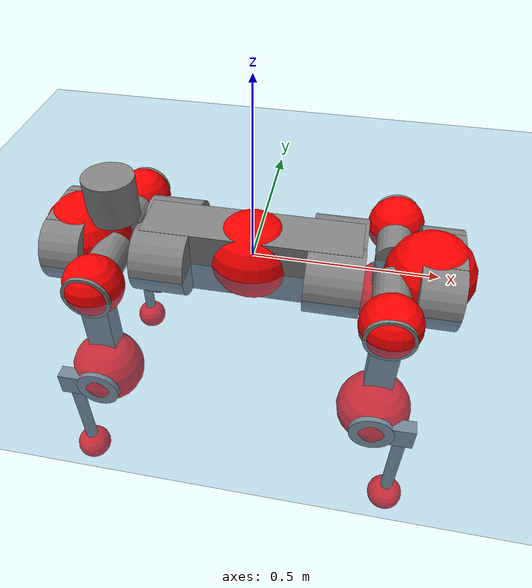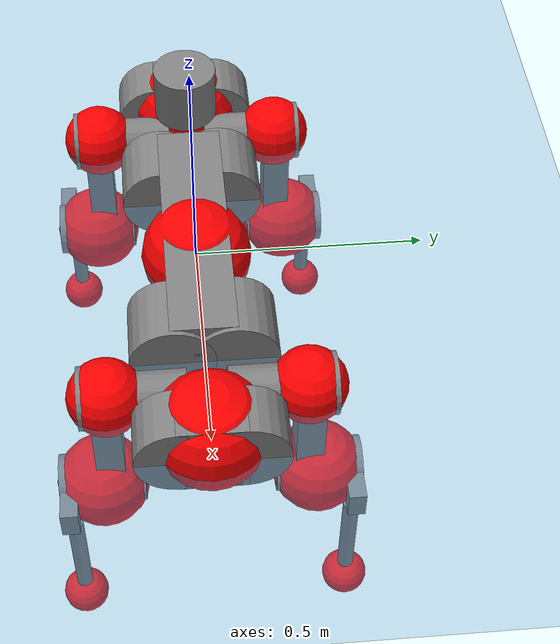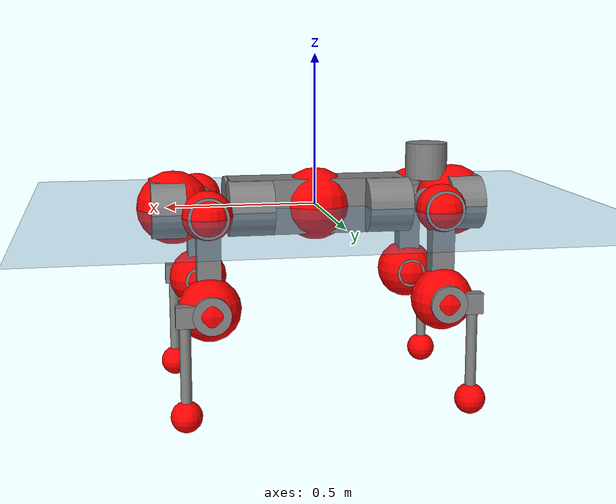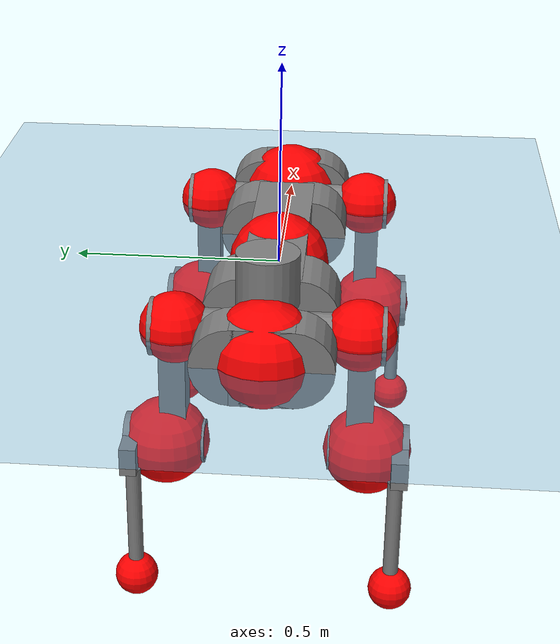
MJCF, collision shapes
<mujoco model="anymal_c">
  <compiler angle="radian" assetdir="assets" balanceinertia="true" inertiafromgeom="false"/>

  <option timestep="0.005" density="1.2" viscosity="2e-05"/>

  <size nkey="1"/>

  <visual>
    <quality shadowsize="8192"/>
    <map shadowclip="0.5"/>
  </visual>

  <default>
    <default class="/">
      <material specular="0" shininess="0.25"/>
      <geom contype="0" conaffinity="0" group="1" solref="-1000 -80"/>
      <site size="0.01 0.005 0.005" group="5"/>
      <general forcelimited="true" forcerange="-80 80" biastype="affine" gainprm="80" biasprm="0 -80 -2"/>
      <default class="anymal_c">
        <joint armature="0.01" damping="0.01" frictionloss="0.1"/>
        <default class="visual">
          <geom type="mesh" group="2"/>
          <default class="visual_zflip"/>
        </default>
        <default class="collision">
          <geom type="cylinder" group="3"/>
          <default class="foot">
            <geom size="0.03 0 0" type="sphere" condim="6" priority="1" friction="0.8 0.02 0.01" solimp="0.015 1 0.03"/>
          </default>
        </default>
      </default>
      <default class="reward_collision_sphere">
        <geom group="5" rgba="1 0 0 1"/>
      </default>
    </default>
  </default>

  <asset>
    <texture type="skybox" colorspace="auto" name="//unnamed_texture_0" builtin="gradient" rgb1="0.95 0.95 0.95" rgb2="0.95 0.95 0.95" width="100" height="600"/>
    <texture type="2d" colorspace="auto" name="texplane" builtin="checker" rgb1="0.345 0.575 0.748" rgb2="0.345 0.575 0.748" markrgb="1 1 1" width="512" height="512"/>
    <texture type="2d" colorspace="linear" name="base" file="base.png"/>
    <texture type="2d" colorspace="linear" name="top_shell" file="top_shell.png"/>
    <texture type="2d" colorspace="linear" name="bottom_shell" file="bottom_shell.png"/>
    <texture type="2d" colorspace="linear" name="remote" file="remote.png"/>
    <texture type="2d" colorspace="linear" name="hatch" file="hatch.png"/>
    <texture type="2d" colorspace="linear" name="handle" file="handle.png"/>
    <texture type="2d" colorspace="linear" name="face" file="face.png"/>
    <texture type="2d" colorspace="linear" name="battery" file="battery.png"/>
    <texture type="2d" colorspace="linear" name="lidar_cage" file="lidar_cage.png"/>
    <texture type="2d" colorspace="linear" name="depth_camera" file="depth_camera.png"/>
    <texture type="2d" colorspace="linear" name="wide_angle_camera" file="wide_angle_camera.png"/>
    <texture type="2d" colorspace="linear" name="lidar" file="lidar.png"/>
    <texture type="2d" colorspace="linear" name="drive" file="drive.png"/>
    <texture type="2d" colorspace="linear" name="hip_l" file="hip_l.png"/>
    <texture type="2d" colorspace="linear" name="shank_l" file="shank_l.png"/>
    <texture type="2d" colorspace="linear" name="foot" file="foot.png"/>
    <texture type="2d" colorspace="linear" name="thigh" file="thigh.png"/>
    <texture type="2d" colorspace="linear" name="shank_r" file="shank_r.png"/>
    <texture type="2d" colorspace="linear" name="hip_r" file="hip_r.png"/>
    <material name="MatPlane" class="/" texture="texplane" texuniform="true" texrepeat="2 2" specular="0.9" shininess="0.5"/>
    <material name="black_plastic" class="/" rgba="0.007 0.007 0.007 1"/>
    <material name="green" class="/" rgba="0.052 0.178 0.033 1"/>
    <material name="red" class="/" rgba="0.178 0.006 0.005 1"/>
    <material name="yellow" class="/" rgba="0.178 0.119 0.006 1"/>
    <material name="lwl" class="/" rgba="0.8 0.8 0.8 1"/>
    <material name="base" class="/" texture="base"/>
    <material name="top_shell" class="/" texture="top_shell"/>
    <material name="bottom_shell" class="/" texture="bottom_shell"/>
    <material name="hip_l" class="/" texture="hip_l"/>
    <material name="thigh" class="/" texture="thigh"/>
    <material name="shank_l" class="/" texture="shank_l"/>
    <material name="foot" class="/" texture="foot"/>
    <material name="hip_r" class="/" texture="hip_r"/>
    <material name="shank" class="/" texture="shank_r"/>
    <material name="hatch" class="/" texture="hatch"/>
    <material name="remote" class="/" texture="remote"/>
    <material name="handle" class="/" texture="handle"/>
    <material name="face" class="/" texture="face"/>
    <material name="depth_camera" class="/" texture="depth_camera"/>
    <material name="wide_angle_camera" class="/" texture="wide_angle_camera"/>
    <material name="battery" class="/" texture="battery"/>
    <material name="lidar_cage" class="/" texture="lidar_cage"/>
    <material name="lidar" class="/" texture="lidar"/>
    <material name="drive" class="/" texture="drive"/>
    <mesh name="base_0" class="/" file="base_0.obj"/>
    <mesh name="base_1" class="/" file="base_1.obj"/>
    <mesh name="base_2" class="/" file="base_2.obj"/>
    <mesh name="base_3" class="/" file="base_3.obj"/>
    <mesh name="base_4" class="/" file="base_4.obj"/>
    <mesh name="base_5" class="/" file="base_5.obj"/>
    <mesh name="top_shell" class="/" file="top_shell.obj"/>
    <mesh name="bottom_shell" class="/" file="bottom_shell.obj"/>
    <mesh name="remote" class="/" file="remote.obj"/>
    <mesh name="handle" class="/" file="handle.obj"/>
    <mesh name="face" class="/" file="face.obj"/>
    <mesh name="wide_angle_camera" class="/" file="wide_angle_camera.obj"/>
    <mesh name="depth_camera" class="/" file="depth_camera.obj"/>
    <mesh name="battery" class="/" file="battery.obj"/>
    <mesh name="lidar_cage" class="/" file="lidar_cage.obj"/>
    <mesh name="lidar" class="/" file="lidar.obj"/>
    <mesh name="drive" class="/" file="drive.obj"/>
    <mesh name="hip_l" class="/" file="hip_l.obj"/>
    <mesh name="thigh" class="/" file="thigh.obj"/>
    <mesh name="shank_l" class="/" file="shank_l.obj"/>
    <mesh name="foot" class="/" file="foot.obj"/>
    <mesh name="hip_r" class="/" file="hip_r.obj"/>
    <mesh name="hatch" class="/" file="hatch.obj"/>
    <mesh name="shank_r" class="/" file="shank_r.obj"/>
  </asset>

  <worldbody>
    <geom name="floor" class="/" size="100 100 0.125" type="plane" group="0" material="MatPlane"/>
    <light name="toplight_shadow" class="/" pos="0 0 5" dir="0.0990148 0.0990148 -0.990148" type="directional" ambient="0.04 0.04 0.04" diffuse="0.55 0.55 0.55" specular="0.12 0.12 0.12"/>
    <light name="toplight_fill" class="/" pos="0 0 5" dir="0.0990148 0.0990148 -0.990148" type="directional" castshadow="false" ambient="0.04 0.04 0.04" diffuse="0.3 0.3 0.3" specular="0.08 0.08 0.08"/>
    <body name="trunk" childclass="anymal_c" pos="-0.000885046 0.000706232 0.000480224" quat="1 7.10573e-05 -3.49141e-05 -4.82551e-05">
      <inertial pos="0.00119172 -0.000260869 0.0503493" quat="0.498509 0.500996 0.499479 0.501012" mass="19.9434" diaginertia="0.851245 0.471274 0.254572"/>
      <joint name="//unnamed_joint_0" type="free" armature="0" damping="0" frictionloss="0"/>
      <geom name="//unnamed_geom_1" class="visual" material="green" mesh="base_0"/>
      <geom name="//unnamed_geom_2" class="visual" material="yellow" mesh="base_1"/>
      <geom name="//unnamed_geom_3" class="visual" material="red" mesh="base_2"/>
      <geom name="//unnamed_geom_4" class="visual" material="black_plastic" mesh="base_3"/>
      <geom name="//unnamed_geom_5" class="visual" material="lwl" mesh="base_4"/>
      <geom name="//unnamed_geom_6" class="visual" material="base" mesh="base_5"/>
      <geom name="trunk_1" class="collision" size="0.293313 0.0707996 0.0910281" type="box"/>
      <geom name="trunk_2" class="collision" size="0.0910281 0.0733282" pos="0.230193 0.0661579 0" quat="0.707107 0 0.707107 0"/>
      <geom name="trunk_3" class="collision" size="0.0910281 0.0733282" pos="-0.230193 0.0661579 0" quat="0.707107 0 0.707107 0"/>
      <geom name="trunk_4" class="collision" size="0.0910281 0.0733282" pos="0.230193 -0.0661579 0" quat="0.707107 0 0.707107 0"/>
      <geom name="trunk_5" class="collision" size="0.0910281 0.0733282" pos="-0.230193 -0.0661579 0" quat="0.707107 0 0.707107 0"/>
      <geom name="//unnamed_geom_12" class="visual" material="top_shell" mesh="top_shell"/>
      <geom name="//unnamed_geom_13" class="visual" material="bottom_shell" mesh="bottom_shell"/>
      <geom name="//unnamed_geom_14" class="visual" material="remote" mesh="remote"/>
      <geom name="//unnamed_geom_15" class="visual" material="handle" mesh="handle"/>
      <geom name="//unnamed_geom_16" class="visual" pos="0.438689 0 0" quat="1 0 0 0" material="face" mesh="face"/>
      <geom name="trunk_6" class="collision" size="0.0556283 0.0707996 0.0910281" pos="0.496899 0 0" type="box"/>
      <geom name="//unnamed_geom_18" class="collision" size="0.0910281 0.0556283" pos="0.496899 0.0661579 0" quat="0.707107 0 0.707107 0"/>
      <geom name="//unnamed_geom_19" class="collision" size="0.0910281 0.0556283" pos="0.496899 -0.0661579 0" quat="0.707107 0 0.707107 0"/>
      <geom name="//unnamed_geom_20" class="visual" pos="0.48859 0 -0.0298899" quat="0.965926 0 0.258819 0" material="depth_camera" mesh="depth_camera"/>
      <geom name="//unnamed_geom_21" class="visual" pos="0.542938 0 0.015431" material="wide_angle_camera" mesh="wide_angle_camera"/>
      <geom name="//unnamed_geom_22" class="visual_zflip" pos="-0.438689 0 0" quat="0 0 0 1" material="face" mesh="face"/>
      <geom name="trunk_7" class="collision" size="0.0556283 0.0707996 0.0910281" pos="-0.496899 0 0" quat="0 0 0 1" type="box"/>
      <geom name="//unnamed_geom_24" class="collision" size="0.0910281 0.0556283" pos="-0.496899 -0.0661579 0" quat="0 -0.707107 0 0.707107"/>
      <geom name="//unnamed_geom_25" class="collision" size="0.0910281 0.0556283" pos="-0.496899 0.0661579 0" quat="0 -0.707107 0 0.707107"/>
      <geom name="//unnamed_geom_26" class="visual" pos="-0.48859 0 -0.0298899" quat="0 -0.258819 0 0.965926" material="depth_camera" mesh="depth_camera"/>
      <geom name="//unnamed_geom_27" class="visual_zflip" pos="-0.542938 0 0.015431" quat="0 0 0 1" material="wide_angle_camera" mesh="wide_angle_camera"/>
      <geom name="//unnamed_geom_28" class="visual" material="battery" mesh="battery"/>
      <geom name="//unnamed_geom_29" class="visual" pos="0 0.0707762 0.0301541" quat="0.683013 -0.183013 0.183013 0.683013" material="depth_camera" mesh="depth_camera"/>
      <geom name="//unnamed_geom_30" class="visual" pos="0 -0.0707762 0.0301541" quat="0.683013 0.183013 0.183013 -0.683013" material="depth_camera" mesh="depth_camera"/>
      <geom name="//unnamed_geom_31" class="visual" pos="-0.385242 0 0.0757637" quat="1 0 0 0" material="lidar_cage" mesh="lidar_cage"/>
      <geom name="trunk_8" class="collision" size="0.0707996 0.0606854" pos="-0.385242 0 0.137612"/>
      <geom name="//unnamed_geom_33" class="visual" pos="-0.385242 -4.44906e-05 0.146579" quat="0.707107 0 0 -0.707107" material="lidar" mesh="lidar"/>
      <geom name="//unnamed_geom_34" class="visual" pos="0.317401 0.0983222 -1.47807e-09" quat="0.258819 0.965926 0 0" material="drive" mesh="drive"/>
      <geom name="//unnamed_geom_35" class="visual" pos="0.317401 -0.0983222 1.47807e-09" quat="0.258819 -0.965926 0 0" material="drive" mesh="drive"/>
      <geom name="//unnamed_geom_36" class="visual" pos="-0.317401 0.0983222 1.47807e-09" quat="0 0 0.965926 -0.258819" material="drive" mesh="drive"/>
      <geom name="//unnamed_geom_37" class="visual" pos="-0.317401 -0.0983222 -1.47807e-09" quat="0 0 -0.965926 -0.258819" material="drive" mesh="drive"/>
      <geom name="//unnamed_geom_38" class="visual" pos="0.12277 0 0.0752483" quat="1 0 0 0" material="hatch" mesh="hatch"/>
      <geom name="//unnamed_geom_39" class="reward_collision_sphere" size="0.121371"/>
      <geom name="//unnamed_geom_40" class="reward_collision_sphere" size="0.121371" pos="0.476261 0 0"/>
      <geom name="//unnamed_geom_41" class="reward_collision_sphere" size="0.121371" pos="-0.476261 0 0"/>
      <site name="imu" pos="0.262667 0.00626659 0.0465535" size="0.0101142"/>
      <camera name="track" pos="0 -1.89023 0" quat="0.707107 0.707107 0 0" mode="trackcom"/>
      <camera name="ego_camera" pos="0.476261 0 -0.0412319" quat="-0.5 -0.5 0.5 0.5"/>
      <body name="LF_HIP" pos="0.318493 0.0995744 -0.0013126" quat="0.258734 0.965949 -0.000153283 -0.000471336">
        <inertial pos="0.0588462 -0.0132962 -0.00752182" quat="-0.127582 0.708739 -0.135454 0.680488" mass="2.87377" diaginertia="0.00775313 0.00368904 0.00379434"/>
        <joint name="LF_HAA" pos="0 0 0" axis="0.99999 -0.00129128 -0.00420231" range="-0.713795 0.485315" armature="0.00991447" damping="0.014806" frictionloss="0.0979832"/>
        <geom name="//unnamed_geom_42" class="visual" pos="0 -8.69481e-05 1.42812e-05" quat="0.258819 -0.965926 0 0" material="hip_l" mesh="hip_l"/>
        <geom name="//unnamed_geom_43" class="visual" pos="0.0633956 -0.0753567 -0.044141" quat="0.183013 -0.683013 0.683013 0.183013" material="drive" mesh="drive"/>
        <geom name="//unnamed_geom_44" class="collision" size="0.0505712 0.0707996" pos="0.0633956 -0.0113034 -0.00711766" quat="-0.353553 -0.612372 0.612372 -0.353553"/>
        <body name="LF_THIGH" pos="0.0633118 -0.0685693 -0.0432495" quat="0.182959 -0.683135 0.682916 0.182971">
          <inertial pos="0.0337607 -0.000140345 -0.252823" quat="0.993236 -0.0040115 -0.0801116 0.0839511" mass="3.16691" diaginertia="0.0402521 0.0226412 0.00490224"/>
          <joint name="LF_HFE" pos="0 0 0" axis="0.999993 -0.00146468 0.00350193" stiffness="0.0070777" range="-3.14243 3.12894" armature="0.00984869" damping="0.00247504" frictionloss="0.0967739"/>
          <geom name="//unnamed_geom_45" class="visual" pos="0.00225312 3.55038e-06 0" quat="0.707107 0 0 -0.707107" material="thigh" mesh="thigh"/>
          <geom name="//unnamed_geom_46" class="collision" size="0.0657425 0.0404569" pos="0.0423343 0 0" quat="0.5 0.5 -0.5 -0.5"/>
          <geom name="//unnamed_geom_47" class="collision" size="0.0379284 0.0303427 0.142928" pos="0.0317507 0 -0.145666" quat="0.707107 0 0 -0.707107" type="box"/>
          <geom name="//unnamed_geom_48" class="visual" pos="0.106153 0 -0.293777" quat="1 0 0 0" material="drive" mesh="drive"/>
          <geom name="//unnamed_geom_49" class="collision" size="0.0505712 0.0707996" pos="0.0320682 0 -0.293777" quat="0.707107 0 0.707107 0"/>
          <geom name="//unnamed_geom_50" class="reward_collision_sphere" size="0.0809138" pos="0.0264589 0 0"/>
          <body name="LF_SHANK" pos="0.106685 -9.94183e-05 -0.294278" quat="1 -0.000245233 -0.000222016 -0.000352828">
            <inertial pos="0.00483711 -0.0587824 -0.0826725" quat="0.992817 -0.116652 -0.00118604 -0.0265578" mass="0.61043" diaginertia="0.0135186 0.00689172 0.00131656"/>
            <joint name="LF_KFE" pos="0 0 0" axis="1 0.000551213 -0.000208681" range="-3.13747 3.13899" armature="0.0106503" damping="0.00930908" frictionloss="0.0994131"/>
            <geom name="//unnamed_geom_51" class="visual" pos="0.000734692 0.00391741 0" quat="0.707107 0 0 -0.707107" material="shank_l" mesh="shank_l"/>
            <geom name="LF_kfe_act" class="collision" size="0.0606854 0.0202285" pos="0.0211672 0 0" quat="0.5 0.5 -0.5 -0.5"/>
            <geom name="//unnamed_geom_53" class="collision" size="0.0581558 0.0341355 0.019217" pos="0.0211672 -0.0543431 0" quat="0.5 0.5 -0.5 -0.5" type="box"/>
            <geom name="//unnamed_geom_54" class="visual" pos="0.0138114 -0.0818603 -0.348379" quat="0.382683 0 0 -0.92388" material="foot" mesh="foot"/>
            <geom name="LF_calf" class="collision" size="0.0176999 0.142866" pos="0.0138116 -0.0831227 -0.174189" quat="0.707107 0 0 -0.707107"/>
            <geom name="LF_foot" class="foot" size="0.0288004" pos="0.0138116 -0.0831227 -0.325186" quat="0.707107 0 0 -0.707107"/>
            <geom name="//unnamed_geom_57" class="reward_collision_sphere" size="0.101142" pos="-0.0529179 0 0"/>
            <geom name="//unnamed_geom_58" class="reward_collision_sphere" size="0.0505712" pos="0.0138116 -0.0831227 -0.325186"/>
            <site name="LF_foot" class="foot" pos="0.0138116 -0.0831227 -0.325186" quat="0.707107 0 0 -0.707107" size="0.0101142"/>
          </body>
        </body>
      </body>
      <body name="RF_HIP" pos="0.317993 -0.0985439 -0.000147507" quat="0.258798 -0.965931 0.000205251 0.00011613">
        <inertial pos="0.0598759 0.0147985 -0.00852515" quat="0.134579 0.679802 0.126841 0.709697" mass="2.90744" diaginertia="0.00766779 0.00365413 0.00383639"/>
        <joint name="RF_HAA" pos="0 0 0" axis="1 -0.000877884 -0.000204304" stiffness="0.000560415" range="-0.511903 0.722521" armature="0.00958472" damping="0.00991477" frictionloss="0.106003"/>
        <geom name="//unnamed_geom_59" class="visual" pos="0 8.69474e-05 1.42811e-05" quat="0.258819 0.965926 0 0" material="hip_r" mesh="hip_r"/>
        <geom name="//unnamed_geom_60" class="visual" pos="0.0633956 0.0753567 -0.044141" quat="0.183013 0.683013 0.683013 -0.183013" material="drive" mesh="drive"/>
        <geom name="//unnamed_geom_61" class="collision" size="0.0505712 0.0707996" pos="0.0633956 0.0113034 -0.00711766" quat="-0.353553 0.612372 0.612372 0.353553"/>
        <body name="RF_THIGH" pos="0.064153 0.0683961 -0.0436715" quat="0.183058 0.683063 0.682902 -0.183194">
          <inertial pos="0.0333413 -0.00118788 -0.25326" quat="0.992934 -0.00608278 -0.0797432 0.0876658" mass="3.13891" diaginertia="0.040428 0.022827 0.00490302"/>
          <joint name="RF_HFE" pos="0 0 0" axis="0.999995 0.00226062 0.00233506" stiffness="0.00582323" range="-3.14262 3.14442" armature="0.0101151" damping="0.00919457" frictionloss="0.0978781"/>
          <geom name="//unnamed_geom_62" class="visual" pos="0.00225312 3.55038e-06 0" quat="0.707107 0 0 -0.707107" material="thigh" mesh="thigh"/>
          <geom name="//unnamed_geom_63" class="collision" size="0.0657425 0.0404569" pos="0.0423343 0 0" quat="0.5 0.5 0.5 0.5"/>
          <geom name="//unnamed_geom_64" class="collision" size="0.0379284 0.0303427 0.142928" pos="0.0317507 0 -0.145666" quat="0.707107 0 0 0.707107" type="box"/>
          <geom name="//unnamed_geom_65" class="visual" pos="0.106153 0 -0.293777" quat="1 0 0 0" material="drive" mesh="drive"/>
          <geom name="//unnamed_geom_66" class="collision" size="0.0505712 0.0707996" pos="0.0320682 0 -0.293777" quat="0.707107 0 0.707107 0"/>
          <geom name="//unnamed_geom_67" class="reward_collision_sphere" size="0.0809138" pos="0.0264589 0 0"/>
          <body name="RF_SHANK" pos="0.105027 0.000189994 -0.294111" quat="1 1.57231e-05 -1.42322e-05 8.42635e-06">
            <inertial pos="0.00501034 0.0578856 -0.0832278" quat="0.993103 0.114382 -0.00186603 0.0256696" mass="0.610038" diaginertia="0.0134915 0.00701131 0.00129589"/>
            <joint name="RF_KFE" pos="0 0 0" axis="0.999993 0.00345634 -0.00138885" range="-3.13657 3.13437" armature="0.0099815" damping="0.00442851" frictionloss="0.102887"/>
            <geom name="//unnamed_geom_68" class="visual" pos="0.000734688 -0.00391741 0" quat="0.707107 0 0 0.707107" material="shank" mesh="shank_r"/>
            <geom name="RF_kfe_act" class="collision" size="0.0606854 0.0202285" pos="0.0211672 0 0" quat="0.5 0.5 0.5 0.5"/>
            <geom name="//unnamed_geom_70" class="collision" size="0.0581558 0.0341355 0.019217" pos="0.0211672 0.0543431 0" quat="0.5 0.5 0.5 0.5" type="box"/>
            <geom name="//unnamed_geom_71" class="visual" pos="0.0138117 0.0818603 -0.348379" quat="0.382683 0 0 0.92388" material="foot" mesh="foot"/>
            <geom name="RF_calf" class="collision" size="0.0176999 0.142866" pos="0.0138116 0.0831227 -0.174189" quat="0.707107 0 0 0.707107"/>
            <geom name="RF_foot" class="foot" size="0.0298884" pos="0.0138116 0.0831227 -0.325186" quat="0.707107 0 0 0.707107"/>
            <geom name="//unnamed_geom_74" class="reward_collision_sphere" size="0.101142" pos="-0.0529179 0 0"/>
            <geom name="//unnamed_geom_75" class="reward_collision_sphere" size="0.0505712" pos="0.0138116 0.0831227 -0.325186"/>
            <site name="RF_foot" class="foot" pos="0.0138116 0.0831227 -0.325186" quat="0.707107 0 0 0.707107" size="0.0101142"/>
          </body>
        </body>
      </body>
      <body name="LH_HIP" pos="-0.317255 0.0987498 -0.000337783" quat="-0.000151544 0.000800443 0.965869 -0.25903">
        <inertial pos="0.0610515 0.0138124 -0.00863842" quat="0.135136 0.679121 0.127915 0.710049" mass="2.88183" diaginertia="0.00775065 0.00366887 0.00379902"/>
        <joint name="LH_HAA" pos="0 0 0" axis="0.999999 -0.000914564 0.000792525" range="-0.50404 0.73015" armature="0.010059" damping="0.0099233" frictionloss="0.0989638"/>
        <geom name="//unnamed_geom_76" class="visual" pos="0 8.69474e-05 1.42811e-05" quat="-0.258819 -0.965926 0 0" material="hip_r" mesh="hip_r"/>
        <geom name="//unnamed_geom_77" class="visual" pos="0.0633956 0.0753567 -0.044141" quat="0.183013 0.683013 0.683013 -0.183013" material="drive" mesh="drive"/>
        <geom name="//unnamed_geom_78" class="collision" size="0.0505712 0.0707996" pos="0.0633956 0.0113034 -0.00711766" quat="-0.353553 0.612372 0.612372 0.353553"/>
        <body name="LH_THIGH" pos="0.0618937 0.0676191 -0.0441757" quat="0.183109 0.68298 0.683019 -0.183016">
          <inertial pos="0.0325726 -0.000563363 -0.253561" quat="0.992909 -0.00520681 -0.0799028 0.0878603" mass="3.17895" diaginertia="0.0402695 0.0226476 0.00486362"/>
          <joint name="LH_HFE" pos="0 0 0" axis="0.999997 0.00199022 -0.00121916" range="-3.15058 3.13593" armature="0.0104776" damping="0.00315621" frictionloss="0.102434"/>
          <geom name="//unnamed_geom_79" class="visual" pos="0.00225312 3.55038e-06 0" quat="0.707107 0 0 -0.707107" material="thigh" mesh="thigh"/>
          <geom name="//unnamed_geom_80" class="collision" size="0.0657425 0.0404569" pos="0.0423343 0 0" quat="0.5 0.5 -0.5 -0.5"/>
          <geom name="//unnamed_geom_81" class="collision" size="0.0379284 0.0303427 0.142928" pos="0.0317507 0 -0.145666" quat="0.707107 0 0 -0.707107" type="box"/>
          <geom name="//unnamed_geom_82" class="visual" pos="0.106153 0 -0.293777" quat="1 0 0 0" material="drive" mesh="drive"/>
          <geom name="//unnamed_geom_83" class="collision" size="0.0505712 0.0707996" pos="0.0320682 0 -0.293777" quat="0.707107 0 0.707107 0"/>
          <geom name="//unnamed_geom_84" class="reward_collision_sphere" size="0.0809138" pos="0.0264589 0 0"/>
          <body name="LH_SHANK" pos="0.10563 -0.000203733 -0.29448" quat="1 9.35196e-06 -9.78166e-06 1.63093e-05">
            <inertial pos="0.00582105 0.0577825 -0.0840756" quat="0.992919 0.116055 -0.00100135 0.0253481" mass="0.609312" diaginertia="0.0135263 0.00695941 0.0013103"/>
            <joint name="LH_KFE" pos="0 0 0" axis="0.999998 0.00081444 0.00170435" range="-3.14844 3.14145" armature="0.0103077" damping="0.00356234" frictionloss="0.101612"/>
            <geom name="//unnamed_geom_85" class="visual" pos="0.000734688 -0.00391741 0" quat="-0.707107 0 0 -0.707107" material="shank" mesh="shank_r"/>
            <geom name="LH_kfe_act" class="collision" size="0.0606854 0.0202285" pos="0.0211672 0 0" quat="0.5 0.5 -0.5 -0.5"/>
            <geom name="//unnamed_geom_87" class="collision" size="0.0581558 0.0341355 0.019217" pos="0.0211672 0.0543431 0" quat="0.5 0.5 -0.5 -0.5" type="box"/>
            <geom name="//unnamed_geom_88" class="visual" pos="0.0138117 0.0818603 -0.348379" quat="-0.382683 0 0 -0.92388" material="foot" mesh="foot"/>
            <geom name="LH_calf" class="collision" size="0.0176999 0.142866" pos="0.0138116 0.0831227 -0.174189" quat="0.707107 0 0 -0.707107"/>
            <geom name="LH_foot" class="foot" size="0.0305608" pos="0.0138116 0.0831227 -0.325186" quat="0.707107 0 0 -0.707107"/>
            <geom name="//unnamed_geom_91" class="reward_collision_sphere" size="0.101142" pos="-0.0529179 0 0"/>
            <geom name="//unnamed_geom_92" class="reward_collision_sphere" size="0.0505712" pos="0.0138116 0.0831227 -0.325186"/>
            <site name="LH_foot" class="foot" pos="0.0138116 0.0831227 -0.325186" quat="0.707107 0 0 -0.707107" size="0.0101142"/>
          </body>
        </body>
      </body>
      <body name="RH_HIP" pos="-0.316892 -0.0994077 0.000157923" quat="0.000244179 -0.000121187 -0.965886 -0.258967">
        <inertial pos="0.0599716 -0.0148688 -0.00869502" quat="-0.127121 0.708352 -0.135305 0.681007" mass="2.87211" diaginertia="0.00768038 0.00366523 0.00385212"/>
        <joint name="RH_HAA" pos="0 0 0" axis="1 0.00084783 -0.000356784" range="-0.714517 0.496449" armature="0.010532" damping="0.0178274" frictionloss="0.100257"/>
        <geom name="//unnamed_geom_93" class="visual" pos="0 -8.69481e-05 1.42812e-05" quat="-0.258819 0.965926 0 0" material="hip_l" mesh="hip_l"/>
        <geom name="//unnamed_geom_94" class="visual" pos="0.0633956 -0.0753567 -0.044141" quat="-0.183013 0.683013 -0.683013 -0.183013" material="drive" mesh="drive"/>
        <geom name="//unnamed_geom_95" class="collision" size="0.0505712 0.0707996" pos="0.0633956 -0.0113034 -0.00711766" quat="0.353553 0.612372 -0.612372 0.353553"/>
        <body name="RH_THIGH" pos="0.0632312 -0.0688514 -0.0435659" quat="-0.183183 0.682907 -0.683077 -0.182997">
          <inertial pos="0.0326811 0.000906703 -0.253395" quat="0.993171 -0.00515614 -0.0806692 0.0841269" mass="3.22584" diaginertia="0.0406646 0.0226169 0.00486465"/>
          <joint name="RH_HFE" pos="0 0 0" axis="0.999999 0.000389051 0.00115193" range="-3.15003 3.12581" armature="0.00962182" damping="0.00557098" frictionloss="0.0997714"/>
          <geom name="//unnamed_geom_96" class="visual" pos="0.00225312 3.55038e-06 0" quat="0.707107 0 0 -0.707107" material="thigh" mesh="thigh"/>
          <geom name="//unnamed_geom_97" class="collision" size="0.0657425 0.0404569" pos="0.0423343 0 0" quat="0.5 0.5 0.5 0.5"/>
          <geom name="//unnamed_geom_98" class="collision" size="0.0379284 0.0303427 0.142928" pos="0.0317507 0 -0.145666" quat="0.707107 0 0 0.707107" type="box"/>
          <geom name="//unnamed_geom_99" class="visual" pos="0.106153 0 -0.293777" quat="1 0 0 0" material="drive" mesh="drive"/>
          <geom name="//unnamed_geom_100" class="collision" size="0.0505712 0.0707996" pos="0.0320682 0 -0.293777" quat="0.707107 0 0.707107 0"/>
          <geom name="//unnamed_geom_101" class="reward_collision_sphere" size="0.0809138" pos="0.0264589 0 0"/>
          <body name="RH_SHANK" pos="0.104284 -0.000301261 -0.293473" quat="1 5.28539e-05 8.26514e-05 0.00012076">
            <inertial pos="0.0072411 -0.0577141 -0.0841215" quat="0.992945 -0.11546 -0.00295913 -0.0268223" mass="0.610154" diaginertia="0.0131659 0.00692921 0.00127281"/>
            <joint name="RH_KFE" pos="0 0 0" axis="0.999982 -0.00556387 -0.00212226" range="-3.13429 3.16324" armature="0.0103133" damping="0.0114362" frictionloss="0.102189"/>
            <geom name="//unnamed_geom_102" class="visual" pos="0.000734692 0.00391741 0" quat="0.707107 0 0 -0.707107" material="shank_l" mesh="shank_l"/>
            <geom name="RH_kfe_act" class="collision" size="0.0606854 0.0202285" pos="0.0211672 0 0" quat="0.5 0.5 0.5 0.5"/>
            <geom name="//unnamed_geom_104" class="collision" size="0.0581558 0.0341355 0.019217" pos="0.0211672 -0.0543431 0" quat="0.5 0.5 0.5 0.5" type="box"/>
            <geom name="//unnamed_geom_105" class="visual" pos="0.0138114 -0.0818603 -0.348379" quat="0.382683 0 0 -0.92388" material="foot" mesh="foot"/>
            <geom name="RH_calf" class="collision" size="0.0176999 0.142866" pos="0.0138116 -0.0831227 -0.174189" quat="0.707107 0 0 0.707107"/>
            <geom name="RH_foot" class="foot" size="0.0280283" pos="0.0138116 -0.0831227 -0.325186" quat="0.707107 0 0 0.707107"/>
            <geom name="//unnamed_geom_108" class="reward_collision_sphere" size="0.101142" pos="-0.0529179 0 0"/>
            <geom name="//unnamed_geom_109" class="reward_collision_sphere" size="0.0505712" pos="0.0138116 -0.0831227 -0.325186"/>
            <site name="RH_foot" class="foot" pos="0.0138116 -0.0831227 -0.325186" quat="0.707107 0 0 0.707107" size="0.0101142"/>
          </body>
        </body>
      </body>
    </body>
  </worldbody>

  <contact>
    <pair class="/" geom1="floor" geom2="LF_foot" name="//unnamed_contact_0"/>
    <pair class="/" geom1="floor" geom2="RF_foot" name="//unnamed_contact_1"/>
    <pair class="/" geom1="floor" geom2="LH_foot" name="//unnamed_contact_2"/>
    <pair class="/" geom1="floor" geom2="RH_foot" name="//unnamed_contact_3"/>
  </contact>

  <actuator>
    <general name="LF_HAA" class="/" joint="LF_HAA" forcerange="-81.3949 81.3949" gainprm="81.8889" biasprm="0 -81.8889 -1.94138"/>
    <general name="LF_HFE" class="/" joint="LF_HFE" forcerange="-83.4965 83.4965" gainprm="81.8889" biasprm="0 -81.8889 -1.94138"/>
    <general name="LF_KFE" class="/" joint="LF_KFE" forcerange="-80.9793 80.9793" gainprm="81.8889" biasprm="0 -81.8889 -1.94138"/>
    <general name="RF_HAA" class="/" joint="RF_HAA" forcerange="-85.7806 85.7806" gainprm="81.8889" biasprm="0 -81.8889 -1.94138"/>
    <general name="RF_HFE" class="/" joint="RF_HFE" forcerange="-81.8954 81.8954" gainprm="81.8889" biasprm="0 -81.8889 -1.94138"/>
    <general name="RF_KFE" class="/" joint="RF_KFE" forcerange="-82.8018 82.8018" gainprm="81.8889" biasprm="0 -81.8889 -1.94138"/>
    <general name="LH_HAA" class="/" joint="LH_HAA" forcerange="-81.9497 81.9497" gainprm="81.8889" biasprm="0 -81.8889 -1.94138"/>
    <general name="LH_HFE" class="/" joint="LH_HFE" forcerange="-81.6881 81.6881" gainprm="81.8889" biasprm="0 -81.8889 -1.94138"/>
    <general name="LH_KFE" class="/" joint="LH_KFE" forcerange="-81.2397 81.2397" gainprm="81.8889" biasprm="0 -81.8889 -1.94138"/>
    <general name="RH_HAA" class="/" joint="RH_HAA" forcerange="-82.7857 82.7857" gainprm="81.8889" biasprm="0 -81.8889 -1.94138"/>
    <general name="RH_HFE" class="/" joint="RH_HFE" forcerange="-80.8327 80.8327" gainprm="81.8889" biasprm="0 -81.8889 -1.94138"/>
    <general name="RH_KFE" class="/" joint="RH_KFE" forcerange="-82.7311 82.7311" gainprm="81.8889" biasprm="0 -81.8889 -1.94138"/>
  </actuator>

  <sensor>
    <gyro site="imu" name="imu_angular_velocity"/>
    <velocimeter site="imu" name="imu_linear_velocity"/>
    <framelinvel objtype="site" objname="LF_foot" name="LF_foot_global_linear_velocity"/>
    <framelinvel objtype="site" objname="RF_foot" name="RF_foot_global_linear_velocity"/>
    <framelinvel objtype="site" objname="LH_foot" name="LH_foot_global_linear_velocity"/>
    <framelinvel objtype="site" objname="RH_foot" name="RH_foot_global_linear_velocity"/>
  </sensor>

  <keyframe>
    <key name="home" qpos="0 0 0.55 1 0 0 0 0 0.4 -0.8 0 -0.4 0.8 0 -0.4 0.8 0 0.4 -0.8"/>
  </keyframe>
</mujoco>
